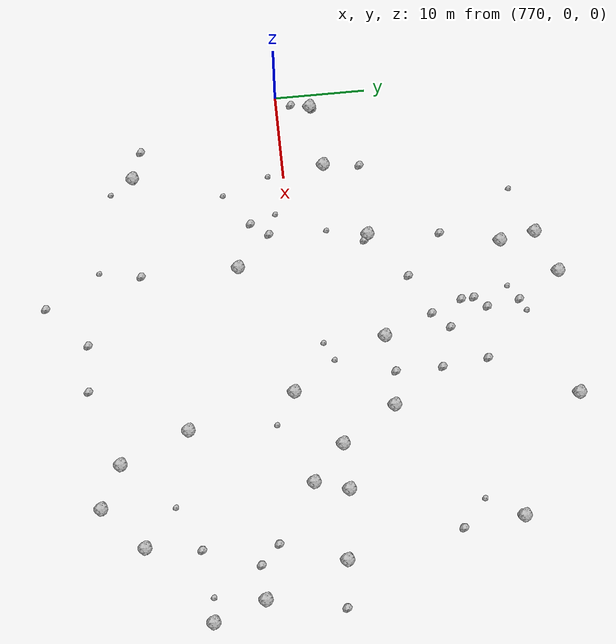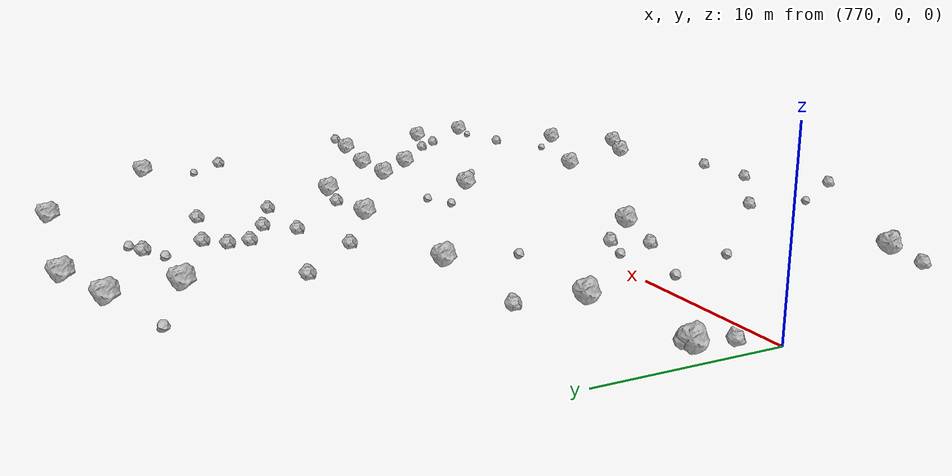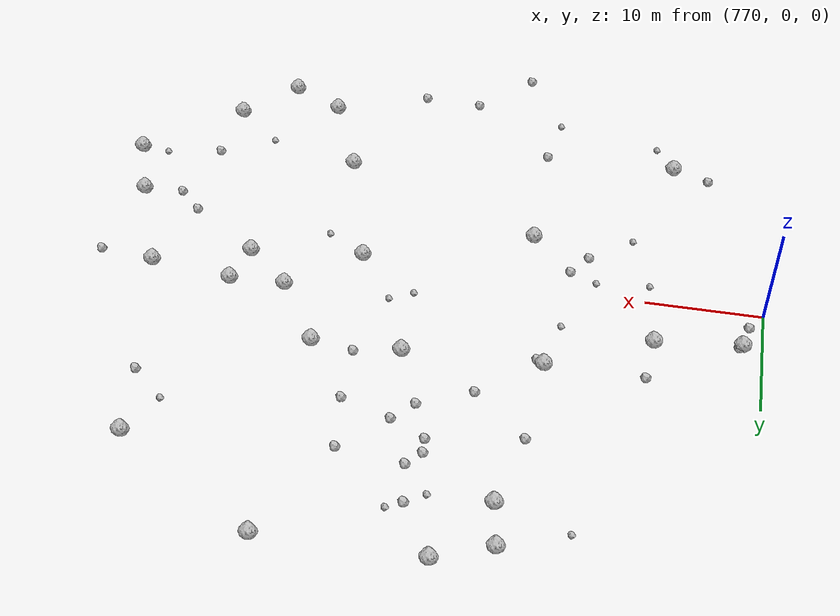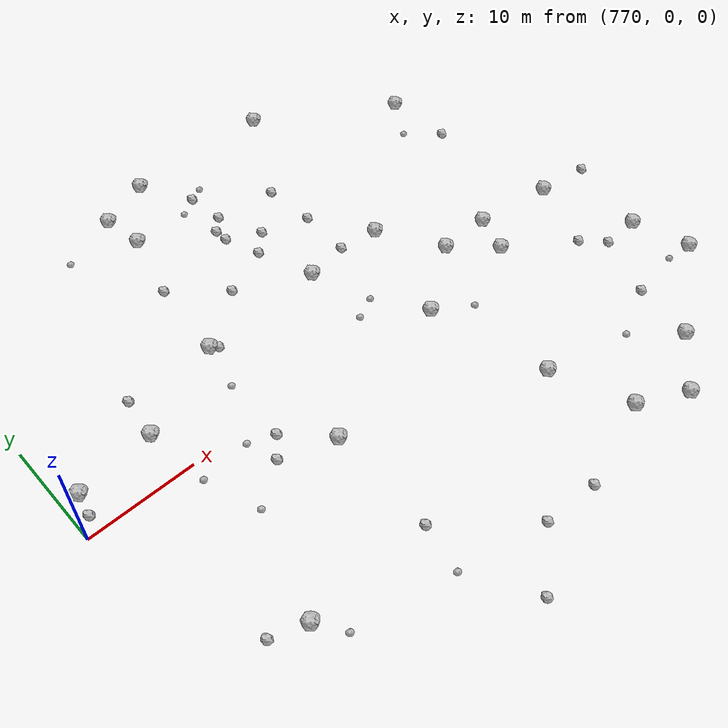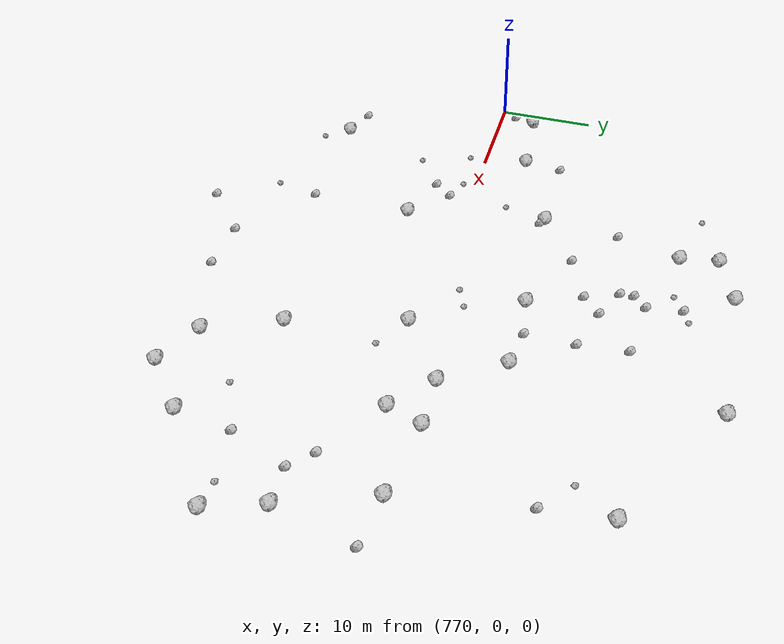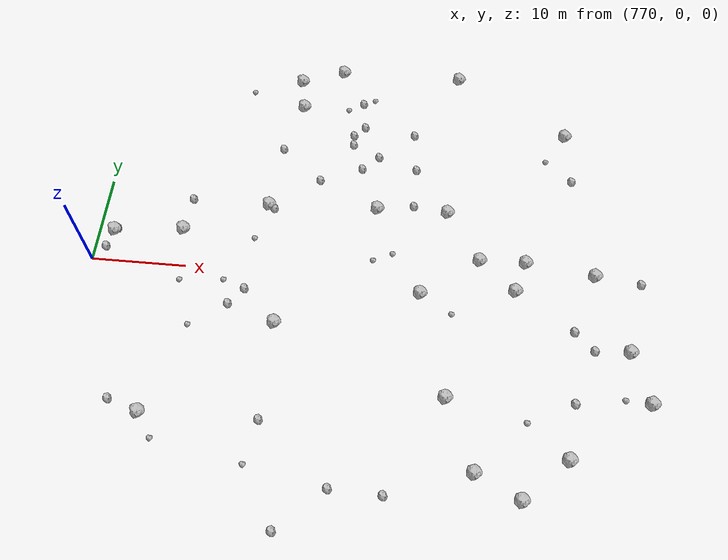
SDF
<sdf version="1.6">
 <world name="default">
  <include><uri>model://sun</uri></include>
  <model name="rock1_20_4">
   <include><uri>model://rock1</uri><pose>815.6411718248191 3.27304394077877 0.5 0 0 0</pose></include>
  </model>
  <model name="rock1_20_5">
   <include><uri>model://rock1</uri><pose>778.9801526860844 4.407614049554255 0.5 0 0 0</pose></include>
  </model>
  <model name="rock1_20_6">
   <include><uri>model://rock1</uri><pose>825.9868002185159 -6.143032626482178 0.5 0 0 0</pose></include>
  </model>
  <model name="rock1_20_7">
   <include><uri>model://rock1</uri><pose>790.255679018009 -5.879432163196487 0.5 0 0 0</pose></include>
  </model>
  <model name="rock1_20_8">
   <include><uri>model://rock1</uri><pose>810.8116573465381 3.1694229165329446 0.5 0 0 0</pose></include>
  </model>
  <model name="rock1_20_9">
   <include><uri>model://rock1</uri><pose>807.2100076327625 8.913497407309407 0.5 0 0 0</pose></include>
  </model>
  <model name="rock1_20_10">
   <include><uri>model://rock1</uri><pose>815.207292110254 -21.828657146492688 0.5 0 0 0</pose></include>
  </model>
  <model name="rock1_20_11">
   <include><uri>model://rock1</uri><pose>789.2665168935393 26.218965857388973 0.5 0 0 0</pose></include>
  </model>
  <model name="rock1_20_12">
   <include><uri>model://rock1</uri><pose>804.7771233516487 -1.2707504940891674 0.5 0 0 0</pose></include>
  </model>
  <model name="rock1_20_13">
   <include><uri>model://rock1</uri><pose>794.0563506880071 28.032713509232956 0.5 0 0 0</pose></include>
  </model>
  <model name="rock1_20_14">
   <include><uri>model://rock1</uri><pose>807.8434506118364 -12.477483431619799 0.5 0 0 0</pose></include>
  </model>
  <model name="rock1_20_15">
   <include><uri>model://rock1</uri><pose>822.8384046867978 2.2870821515712834 0.5 0 0 0</pose></include>
  </model>
  <model name="rock1_20_16">
   <include><uri>model://rock1</uri><pose>778.6042555703516 -16.45701680917034 0.5 0 0 0</pose></include>
  </model>
  <model name="rock1_20_17">
   <include><uri>model://rock1</uri><pose>820.1351398144734 20.509340928262986 0.5 0 0 0</pose></include>
  </model>
  <model name="rock1_20_18">
   <include><uri>model://rock1</uri><pose>814.5663809083804 -0.19419899647366634 0.5 0 0 0</pose></include>
  </model>
  <model name="rock1_20_19">
   <include><uri>model://rock1</uri><pose>810.7960250167437 -19.63200894072806 0.5 0 0 0</pose></include>
  </model>
  <model name="rock1_20_20">
   <include><uri>model://rock1</uri><pose>771.6662307845479 3.6454895255065054 0.5 0 0 0</pose></include>
  </model>
  <model name="rock1_20_21">
   <include><uri>model://rock1</uri><pose>787.7500496803657 8.305697932167334 0.5 0 0 0</pose></include>
  </model>
  <model name="rock1_20_22">
   <include><uri>model://rock1</uri><pose>789.9148041462321 22.371532129748203 0.5 0 0 0</pose></include>
  </model>
  <model name="rock1_20_23">
   <include><uri>model://rock1</uri><pose>819.6383580842345 -17.674183434486025 0.5 0 0 0</pose></include>
  </model>
  <model name="rock1_20_24">
   <include><uri>model://rock1</uri><pose>799.5585234924571 8.793183200553273 0.5 0 0 0</pose></include>
  </model>
  <model name="rock1_20_25">
   <include><uri>model://rock1</uri><pose>827.7135484079234 -11.440048772515524 0.5 0 0 0</pose></include>
  </model>
  <model name="rock1_20_26">
   <include><uri>model://rock1</uri><pose>807.8079400657052 28.097331121283965 0.5 0 0 0</pose></include>
  </model>
  <model name="rock2_20_0">
   <include><uri>model://rock2</uri><pose>802.5630927964962 -22.457958269043843 0.3 0 0 0</pose></include>
  </model>
  <model name="rock2_20_1">
   <include><uri>model://rock2</uri><pose>779.3675016449798 8.351266412435365 0.3 0 0 0</pose></include>
  </model>
  <model name="rock2_20_2">
   <include><uri>model://rock2</uri><pose>799.1894937263793 15.821969334382217 0.3 0 0 0</pose></include>
  </model>
  <model name="rock2_20_3">
   <include><uri>model://rock2</uri><pose>790.1920385398843 -16.22972422835877 0.3 0 0 0</pose></include>
  </model>
  <model name="rock2_20_4">
   <include><uri>model://rock2</uri><pose>797.2683446467468 19.976722141883435 0.3 0 0 0</pose></include>
  </model>
  <model name="rock2_20_5">
   <include><uri>model://rock2</uri><pose>771.9373038477332 3.917954335123987 0.3 0 0 0</pose></include>
  </model>
  <model name="rock2_20_6">
   <include><uri>model://rock2</uri><pose>771.186175469337 1.5965710282788734 0.3 0 0 0</pose></include>
  </model>
  <model name="rock2_20_7">
   <include><uri>model://rock2</uri><pose>820.5027517683177 -4.30938831802456 0.3 0 0 0</pose></include>
  </model>
  <model name="rock2_20_8">
   <include><uri>model://rock2</uri><pose>827.5505823599914 1.7548702481368608 0.3 0 0 0</pose></include>
  </model>
  <model name="rock2_20_9">
   <include><uri>model://rock2</uri><pose>792.9281841409053 12.096189195779623 0.3 0 0 0</pose></include>
  </model>
  <model name="rock2_20_10">
   <include><uri>model://rock2</uri><pose>803.496303522099 14.403115363502181 0.3 0 0 0</pose></include>
  </model>
  <model name="rock2_20_11">
   <include><uri>model://rock2</uri><pose>797.4559415367186 -22.247662127513287 0.3 0 0 0</pose></include>
  </model>
  <model name="rock2_20_12">
   <include><uri>model://rock2</uri><pose>785.2007907061876 -4.121518673479059 0.3 0 0 0</pose></include>
  </model>
  <model name="rock2_20_13">
   <include><uri>model://rock2</uri><pose>788.3528846160153 7.919297643068518 0.3 0 0 0</pose></include>
  </model>
  <model name="rock2_20_14">
   <include><uri>model://rock2</uri><pose>796.7751807552906 23.473144547983992 0.3 0 0 0</pose></include>
  </model>
  <model name="rock2_20_15">
   <include><uri>model://rock2</uri><pose>792.899667059319 -26.49601678629746 0.3 0 0 0</pose></include>
  </model>
  <model name="rock2_20_16">
   <include><uri>model://rock2</uri><pose>786.6316211846005 -2.242923946073038 0.3 0 0 0</pose></include>
  </model>
  <model name="rock2_20_17">
   <include><uri>model://rock2</uri><pose>820.7331003648452 14.29260612150231 0.3 0 0 0</pose></include>
  </model>
  <model name="rock2_20_18">
   <include><uri>model://rock2</uri><pose>796.0777874925442 18.687230449207227 0.3 0 0 0</pose></include>
  </model>
  <model name="rock2_20_19">
   <include><uri>model://rock2</uri><pose>775.3840027488195 -15.355282788668577 0.3 0 0 0</pose></include>
  </model>
  <model name="rock2_20_20">
   <include><uri>model://rock2</uri><pose>796.1547075238797 17.349333827637302 0.3 0 0 0</pose></include>
  </model>
  <model name="rock2_20_21">
   <include><uri>model://rock2</uri><pose>820.3511318556488 -12.012584696059072 0.3 0 0 0</pose></include>
  </model>
  <model name="rock2_20_22">
   <include><uri>model://rock2</uri><pose>822.4436810866188 -6.2574604812832 0.3 0 0 0</pose></include>
  </model>
  <model name="rock2_20_23">
   <include><uri>model://rock2</uri><pose>802.9974199538663 19.256622756523846 0.3 0 0 0</pose></include>
  </model>
  <model name="rock2_20_24">
   <include><uri>model://rock2</uri><pose>788.3120484958906 16.046881165296725 0.3 0 0 0</pose></include>
  </model>
  <model name="rock2_20_25">
   <include><uri>model://rock2</uri><pose>797.4345287257865 14.047419792194546 0.3 0 0 0</pose></include>
  </model>
  <model name="rock2_20_26">
   <include><uri>model://rock2</uri><pose>803.4927681880138 9.492240912771159 0.3 0 0 0</pose></include>
  </model>
  <model name="rock3_20_0">
   <include><uri>model://rock3</uri><pose>779.6890831677317 -1.7591326059830799 0.2 0 0 0</pose></include>
  </model>
  <model name="rock3_20_1">
   <include><uri>model://rock3</uri><pose>780.2185494204529 -18.94028096374952 0.2 0 0 0</pose></include>
  </model>
  <model name="rock3_20_2">
   <include><uri>model://rock3</uri><pose>781.5178630984834 -6.823848017148549 0.2 0 0 0</pose></include>
  </model>
  <model name="rock3_20_3">
   <include><uri>model://rock3</uri><pose>799.583247793378 2.2992456104852863 0.2 0 0 0</pose></include>
  </model>
  <model name="rock3_20_4">
   <include><uri>model://rock3</uri><pose>808.0800761726159 -3.3841515678774243 0.2 0 0 0</pose></include>
  </model>
  <model name="rock3_20_5">
   <include><uri>model://rock3</uri><pose>815.7055826301618 -14.356334877512925 0.2 0 0 0</pose></include>
  </model>
  <model name="rock3_20_6">
   <include><uri>model://rock3</uri><pose>789.3515041822327 -20.684803485610644 0.2 0 0 0</pose></include>
  </model>
  <model name="rock3_20_7">
   <include><uri>model://rock3</uri><pose>783.7552710668893 24.189756862312983 0.2 0 0 0</pose></include>
  </model>
  <model name="rock3_20_8">
   <include><uri>model://rock3</uri><pose>784.2747811296822 -1.371732168055427 0.2 0 0 0</pose></include>
  </model>
  <model name="rock3_20_9">
   <include><uri>model://rock3</uri><pose>801.5899129664258 3.25230586531503 0.2 0 0 0</pose></include>
  </model>
  <model name="rock3_20_10">
   <include><uri>model://rock3</uri><pose>786.7510098990338 3.936225659403455 0.2 0 0 0</pose></include>
  </model>
  <model name="rock3_20_11">
   <include><uri>model://rock3</uri><pose>795.1019782961915 22.411176454174772 0.2 0 0 0</pose></include>
  </model>
  <model name="rock3_20_12">
   <include><uri>model://rock3</uri><pose>817.8976423805411 16.80680534694359 0.2 0 0 0</pose></include>
  </model>
  <model name="rock3_20_13">
   <include><uri>model://rock3</uri><pose>825.1813671119993 -11.250279247956499 0.2 0 0 0</pose></include>
  </model>
  <model name="rock3_20_14">
   <include><uri>model://rock3</uri><pose>798.064673911509 24.073269346596426 0.2 0 0 0</pose></include>
  </model>
 </world>
</sdf>
